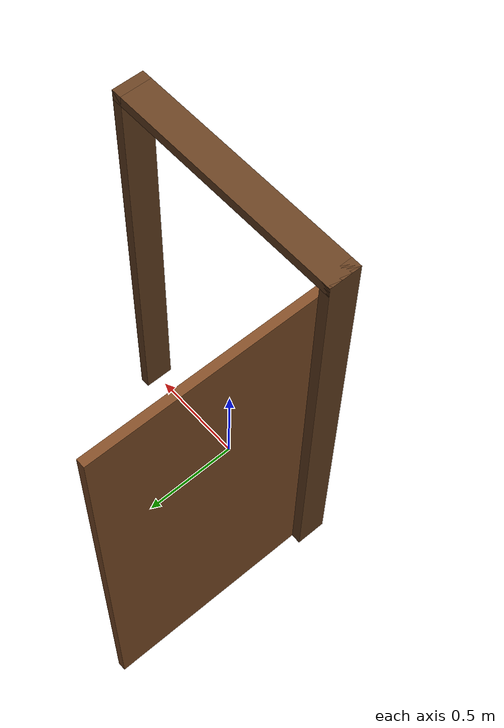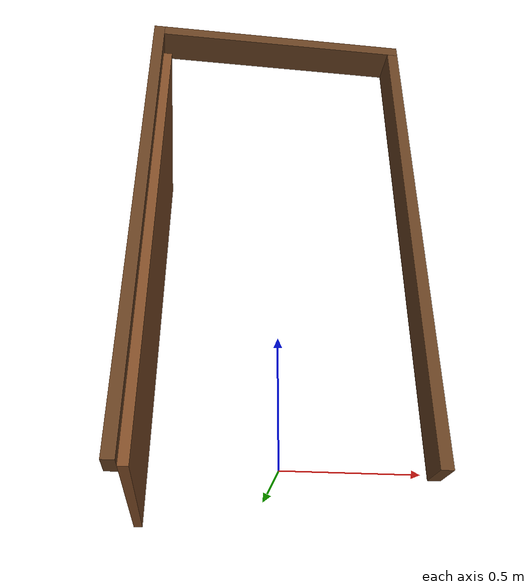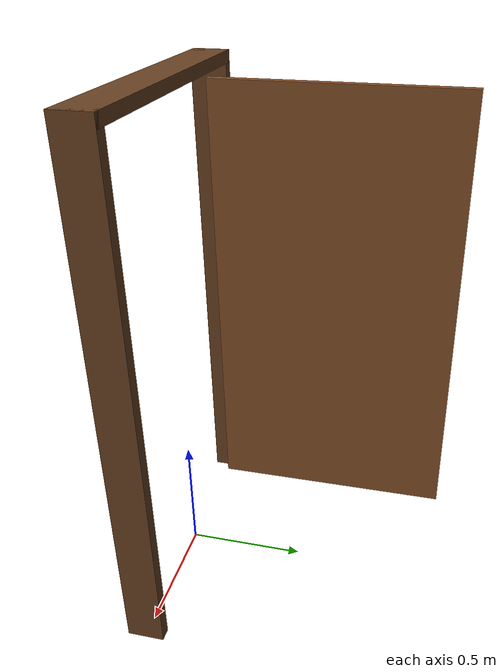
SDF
<?xml version="1.0" ?>
<sdf version="1.6">
  <model name="door_single_wide">
    <static>true</static>
    <link name="frame">
      <pose>0 0 0 0 0 0</pose>
      <!-- Left Post -->
      <collision name="left_post_collision">
        <pose>-0.575 0 1.05 0 0 0</pose>
        <geometry><box><size>0.05 0.15 2.1</size></box></geometry>
      </collision>
      <visual name="left_post_visual">
        <pose>-0.575 0 1.05 0 0 0</pose>
        <geometry><box><size>0.05 0.15 2.1</size></box></geometry>
        <material>
          <ambient>0.4 0.25 0.13 1</ambient>
          <diffuse>0.4 0.25 0.13 1</diffuse>
        </material>
      </visual>
      <!-- Right Post -->
      <collision name="right_post_collision">
        <pose>0.575 0 1.05 0 0 0</pose>
        <geometry><box><size>0.05 0.15 2.1</size></box></geometry>
      </collision>
      <visual name="right_post_visual">
        <pose>0.575 0 1.05 0 0 0</pose>
        <geometry><box><size>0.05 0.15 2.1</size></box></geometry>
        <material>
          <ambient>0.4 0.25 0.13 1</ambient>
          <diffuse>0.4 0.25 0.13 1</diffuse>
        </material>
      </visual>
      <!-- Header -->
      <collision name="header_collision">
        <pose>0 0 2.075 0 0 0</pose>
        <geometry><box><size>1.2 0.15 0.05</size></box></geometry>
      </collision>
      <visual name="header_visual">
        <pose>0 0 2.075 0 0 0</pose>
        <geometry><box><size>1.2 0.15 0.05</size></box></geometry>
        <material>
          <ambient>0.4 0.25 0.13 1</ambient>
          <diffuse>0.4 0.25 0.13 1</diffuse>
        </material>
      </visual>
      <!-- Open Door Panel (rotated 90 deg, extending along +y) -->
      <collision name="panel_collision">
        <pose>-0.53 0.55 1.0 0 0 1.5708</pose>
        <geometry><box><size>1.1 0.04 2.0</size></box></geometry>
      </collision>
      <visual name="panel_visual">
        <pose>-0.53 0.55 1.0 0 0 1.5708</pose>
        <geometry><box><size>1.1 0.04 2.0</size></box></geometry>
        <material>
          <ambient>0.5 0.3 0.15 1</ambient>
          <diffuse>0.5 0.3 0.15 1</diffuse>
        </material>
      </visual>
    </link>
  </model>
</sdf>
